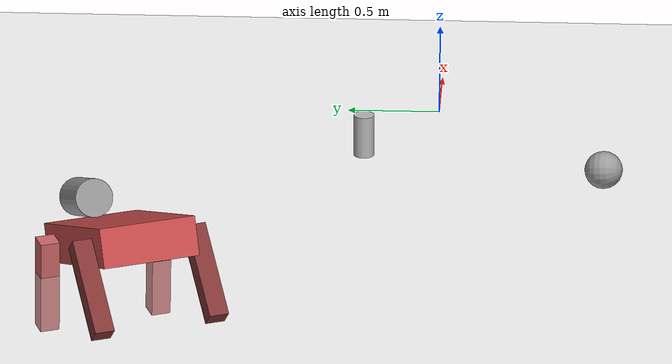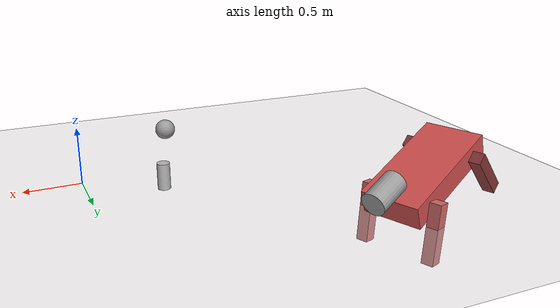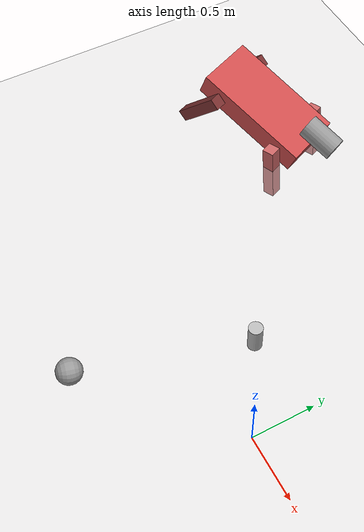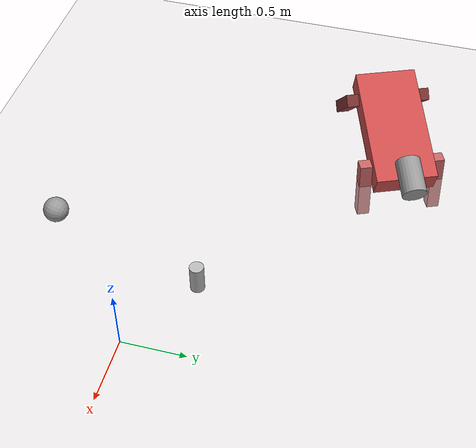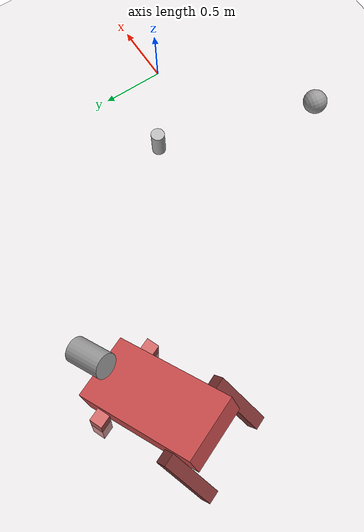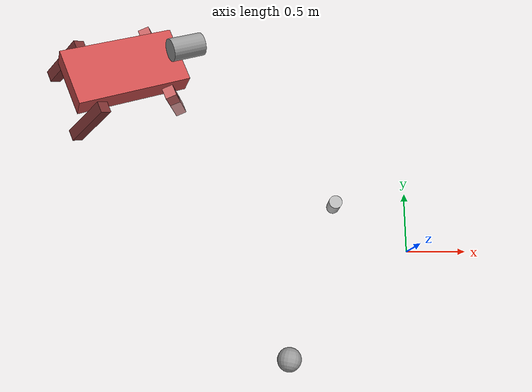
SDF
<sdf version="1.6">
 <world name="default">
  <model name="ground_plane">
   <static>1</static>
   <link name="link">
    <collision name="collision">
     <geometry><plane><normal>0 0 1</normal><size>100 100</size></plane></geometry>
     <surface><friction><ode><mu>100</mu><mu2>50</mu2></ode></friction></surface>
    </collision>
    <visual name="visual">
     <cast_shadows>0</cast_shadows>
     <geometry><plane><normal>0 0 1</normal><size>100 100</size></plane></geometry>
     <material>
      <script><uri>file://media/materials/scripts/gazebo.material</uri><name>Gazebo/Grey</name></script>
     </material>
    </visual>
   </link>
  </model>
  <model name="animal">
   <link name="link_2">
    <pose>-0.089432 0 0.1 0 -0 0</pose>
    <inertial>
     <mass>1</mass>
     <inertia>
      <ixx>0.166667</ixx>
      <ixy>0</ixy>
      <ixz>0</ixz>
      <iyy>0.166667</iyy>
      <iyz>0</iyz>
      <izz>0.166667</izz>
     </inertia>
    </inertial>
    <visual name="visual">
     <geometry><box><size>1 0.5 0.2</size></box></geometry>
     <material>
      <lighting>1</lighting>
      <script><uri>file://media/materials/scripts/gazebo.material</uri><name>Gazebo/Grey</name></script>
      <shader type="pixel"><normal_map>__default__</normal_map></shader>
      <ambient>0.3 0.3 0.3 1</ambient>
      <diffuse>0.8 0.3 0.3 1</diffuse>
      <specular>0.01 0.01 0.01 1</specular>
      <emissive>0 0 0 1</emissive>
     </material>
    </visual>
    <collision name="collision">
     <geometry><box><size>1 0.5 0.2</size></box></geometry>
     <surface>
      <friction>
       <ode><mu>1</mu><mu2>1</mu2><fdir1>0 0 0</fdir1><slip1>0</slip1><slip2>0</slip2></ode>
       <torsional>
        <coefficient>1</coefficient>
        <patch_radius>0</patch_radius>
        <surface_radius>0</surface_radius>
        <use_patch_radius>1</use_patch_radius>
        <ode><slip>0</slip></ode>
       </torsional>
      </friction>
      <bounce><restitution_coefficient>0</restitution_coefficient><threshold>1e+06</threshold></bounce>
      <contact>
       <collide_without_contact>0</collide_without_contact>
       <collide_without_contact_bitmask>1</collide_without_contact_bitmask>
       <collide_bitmask>1</collide_bitmask>
       <ode>
        <soft_cfm>0</soft_cfm>
        <soft_erp>0.2</soft_erp>
        <kp>1e+13</kp>
        <kd>1</kd>
        <max_vel>0.01</max_vel>
        <min_depth>0</min_depth>
       </ode>
       <bullet>
        <split_impulse>1</split_impulse>
        <split_impulse_penetration_threshold>-0.01</split_impulse_penetration_threshold>
        <soft_cfm>0</soft_cfm>
        <soft_erp>0.2</soft_erp>
        <kp>1e+13</kp>
        <kd>1</kd>
       </bullet>
      </contact>
     </surface>
    </collision>
   </link>
   <link name="link_3">
    <pose>0.310565 0.3 -0.1 -3.14159 -1.14159 -3.14159</pose>
    <inertial>
     <mass>1</mass>
     <inertia>
      <ixx>0.166667</ixx>
      <ixy>0</ixy>
      <ixz>0</ixz>
      <iyy>0.166667</iyy>
      <iyz>0</iyz>
      <izz>0.166667</izz>
     </inertia>
    </inertial>
    <visual name="visual">
     <geometry><box><size>0.5 0.1 0.1</size></box></geometry>
     <material>
      <lighting>1</lighting>
      <script><uri>file://media/materials/scripts/gazebo.material</uri><name>Gazebo/Grey</name></script>
      <shader type="pixel"><normal_map>__default__</normal_map></shader>
      <ambient>0.3 0.3 0.3 1</ambient>
      <diffuse>0.8 0.4 0.4 1</diffuse>
      <specular>0.01 0.01 0.01 1</specular>
      <emissive>0 0 0 1</emissive>
     </material>
    </visual>
    <collision name="collision">
     <geometry><box><size>0.5 0.1 0.1</size></box></geometry>
     <surface>
      <friction>
       <ode><mu>1</mu><mu2>1</mu2><fdir1>0 0 0</fdir1><slip1>0</slip1><slip2>0</slip2></ode>
       <torsional>
        <coefficient>1</coefficient>
        <patch_radius>0</patch_radius>
        <surface_radius>0</surface_radius>
        <use_patch_radius>1</use_patch_radius>
        <ode><slip>0</slip></ode>
       </torsional>
      </friction>
      <bounce><restitution_coefficient>0</restitution_coefficient><threshold>1e+06</threshold></bounce>
      <contact>
       <collide_without_contact>0</collide_without_contact>
       <collide_without_contact_bitmask>1</collide_without_contact_bitmask>
       <collide_bitmask>1</collide_bitmask>
       <ode>
        <soft_cfm>0</soft_cfm>
        <soft_erp>0.2</soft_erp>
        <kp>1e+13</kp>
        <kd>1</kd>
        <max_vel>0.01</max_vel>
        <min_depth>0</min_depth>
       </ode>
       <bullet>
        <split_impulse>1</split_impulse>
        <split_impulse_penetration_threshold>-0.01</split_impulse_penetration_threshold>
        <soft_cfm>0</soft_cfm>
        <soft_erp>0.2</soft_erp>
        <kp>1e+13</kp>
        <kd>1</kd>
       </bullet>
      </contact>
     </surface>
    </collision>
   </link>
   <link name="link_3_clone">
    <pose>-0.489432 0.3 -0.1 0 -1.14159 0</pose>
    <inertial>
     <mass>1</mass>
     <inertia>
      <ixx>0.166667</ixx>
      <ixy>0</ixy>
      <ixz>0</ixz>
      <iyy>0.166667</iyy>
      <iyz>0</iyz>
      <izz>0.166667</izz>
     </inertia>
    </inertial>
    <visual name="visual">
     <geometry><box><size>0.5 0.1 0.1</size></box></geometry>
     <material>
      <lighting>1</lighting>
      <script><uri>file://media/materials/scripts/gazebo.material</uri><name>Gazebo/Grey</name></script>
      <shader type="pixel"><normal_map>__default__</normal_map></shader>
      <ambient>0.3 0.3 0.3 1</ambient>
      <diffuse>0.5 0.2 0.2 1</diffuse>
      <specular>0.01 0.01 0.01 1</specular>
      <emissive>0 0 0 1</emissive>
     </material>
    </visual>
    <collision name="collision">
     <geometry><box><size>0.5 0.1 0.1</size></box></geometry>
     <surface>
      <friction>
       <ode><mu>1</mu><mu2>1</mu2><fdir1>0 0 0</fdir1><slip1>0</slip1><slip2>0</slip2></ode>
       <torsional>
        <coefficient>1</coefficient>
        <patch_radius>0</patch_radius>
        <surface_radius>0</surface_radius>
        <use_patch_radius>1</use_patch_radius>
        <ode><slip>0</slip></ode>
       </torsional>
      </friction>
      <bounce><restitution_coefficient>0</restitution_coefficient><threshold>1e+06</threshold></bounce>
      <contact>
       <collide_without_contact>0</collide_without_contact>
       <collide_without_contact_bitmask>1</collide_without_contact_bitmask>
       <collide_bitmask>1</collide_bitmask>
       <ode>
        <soft_cfm>0</soft_cfm>
        <soft_erp>0.2</soft_erp>
        <kp>1e+13</kp>
        <kd>1</kd>
        <max_vel>0.01</max_vel>
        <min_depth>0</min_depth>
       </ode>
       <bullet>
        <split_impulse>1</split_impulse>
        <split_impulse_penetration_threshold>-0.01</split_impulse_penetration_threshold>
        <soft_cfm>0</soft_cfm>
        <soft_erp>0.2</soft_erp>
        <kp>1e+13</kp>
        <kd>1</kd>
       </bullet>
      </contact>
     </surface>
    </collision>
   </link>
   <link name="link_3_clone_0">
    <pose>0.310565 -0.3 -0.1 -3.14159 -1.14159 -3.14159</pose>
    <inertial>
     <mass>1</mass>
     <inertia>
      <ixx>0.166667</ixx>
      <ixy>0</ixy>
      <ixz>0</ixz>
      <iyy>0.166667</iyy>
      <iyz>0</iyz>
      <izz>0.166667</izz>
     </inertia>
    </inertial>
    <visual name="visual">
     <geometry><box><size>0.5 0.1 0.1</size></box></geometry>
     <material>
      <lighting>1</lighting>
      <script><uri>file://media/materials/scripts/gazebo.material</uri><name>Gazebo/Grey</name></script>
      <shader type="pixel"><normal_map>__default__</normal_map></shader>
      <ambient>0.3 0.3 0.3 1</ambient>
      <diffuse>0.8 0.4 0.4 1</diffuse>
      <specular>0.01 0.01 0.01 1</specular>
      <emissive>0 0 0 1</emissive>
     </material>
    </visual>
    <collision name="collision">
     <geometry><box><size>0.5 0.1 0.1</size></box></geometry>
     <surface>
      <friction>
       <ode><mu>1</mu><mu2>1</mu2><fdir1>0 0 0</fdir1><slip1>0</slip1><slip2>0</slip2></ode>
       <torsional>
        <coefficient>1</coefficient>
        <patch_radius>0</patch_radius>
        <surface_radius>0</surface_radius>
        <use_patch_radius>1</use_patch_radius>
        <ode><slip>0</slip></ode>
       </torsional>
      </friction>
      <bounce><restitution_coefficient>0</restitution_coefficient><threshold>1e+06</threshold></bounce>
      <contact>
       <collide_without_contact>0</collide_without_contact>
       <collide_without_contact_bitmask>1</collide_without_contact_bitmask>
       <collide_bitmask>1</collide_bitmask>
       <ode>
        <soft_cfm>0</soft_cfm>
        <soft_erp>0.2</soft_erp>
        <kp>1e+13</kp>
        <kd>1</kd>
        <max_vel>0.01</max_vel>
        <min_depth>0</min_depth>
       </ode>
       <bullet>
        <split_impulse>1</split_impulse>
        <split_impulse_penetration_threshold>-0.01</split_impulse_penetration_threshold>
        <soft_cfm>0</soft_cfm>
        <soft_erp>0.2</soft_erp>
        <kp>1e+13</kp>
        <kd>1</kd>
       </bullet>
      </contact>
     </surface>
    </collision>
   </link>
   <link name="link_3_clone_clone">
    <pose>-0.489432 -0.3 -0.1 0 -1.14159 0</pose>
    <inertial>
     <mass>1</mass>
     <inertia>
      <ixx>0.166667</ixx>
      <ixy>0</ixy>
      <ixz>0</ixz>
      <iyy>0.166667</iyy>
      <iyz>0</iyz>
      <izz>0.166667</izz>
     </inertia>
    </inertial>
    <visual name="visual">
     <geometry><box><size>0.5 0.1 0.1</size></box></geometry>
     <material>
      <lighting>1</lighting>
      <script><uri>file://media/materials/scripts/gazebo.material</uri><name>Gazebo/Grey</name></script>
      <shader type="pixel"><normal_map>__default__</normal_map></shader>
      <ambient>0.3 0.3 0.3 1</ambient>
      <diffuse>0.5 0.2 0.2 1</diffuse>
      <specular>0.01 0.01 0.01 1</specular>
      <emissive>0 0 0 1</emissive>
     </material>
    </visual>
    <collision name="collision">
     <geometry><box><size>0.5 0.1 0.1</size></box></geometry>
     <surface>
      <friction>
       <ode><mu>1</mu><mu2>1</mu2><fdir1>0 0 0</fdir1><slip1>0</slip1><slip2>0</slip2></ode>
       <torsional>
        <coefficient>1</coefficient>
        <patch_radius>0</patch_radius>
        <surface_radius>0</surface_radius>
        <use_patch_radius>1</use_patch_radius>
        <ode><slip>0</slip></ode>
       </torsional>
      </friction>
      <bounce><restitution_coefficient>0</restitution_coefficient><threshold>1e+06</threshold></bounce>
      <contact>
       <collide_without_contact>0</collide_without_contact>
       <collide_without_contact_bitmask>1</collide_without_contact_bitmask>
       <collide_bitmask>1</collide_bitmask>
       <ode>
        <soft_cfm>0</soft_cfm>
        <soft_erp>0.2</soft_erp>
        <kp>1e+13</kp>
        <kd>1</kd>
        <max_vel>0.01</max_vel>
        <min_depth>0</min_depth>
       </ode>
       <bullet>
        <split_impulse>1</split_impulse>
        <split_impulse_penetration_threshold>-0.01</split_impulse_penetration_threshold>
        <soft_cfm>0</soft_cfm>
        <soft_erp>0.2</soft_erp>
        <kp>1e+13</kp>
        <kd>1</kd>
       </bullet>
      </contact>
     </surface>
    </collision>
   </link>
   <link name="link_4">
    <pose>0.447165 0 0.3 0 1.57 0</pose>
    <inertial>
     <mass>1</mass>
     <inertia><ixx>0.1</ixx><ixy>0</ixy><ixz>0</ixz><iyy>0.1</iyy><iyz>0</iyz><izz>0.1</izz></inertia>
    </inertial>
    <visual name="visual">
     <geometry><cylinder><radius>0.1</radius><length>0.3</length></cylinder></geometry>
     <material>
      <lighting>1</lighting>
      <script><uri>file://media/materials/scripts/gazebo.material</uri><name>Gazebo/Grey</name></script>
      <shader type="pixel"><normal_map>__default__</normal_map></shader>
      <ambient>0.1 0.1 0.1 1</ambient>
      <diffuse>0.1 0.1 0.1 1</diffuse>
      <specular>0.01 0.01 0.01 1</specular>
      <emissive>0 0 0 1</emissive>
     </material>
    </visual>
    <collision name="collision">
     <geometry><cylinder><radius>0.1</radius><length>0.3</length></cylinder></geometry>
     <surface>
      <friction>
       <ode><mu>1</mu><mu2>1</mu2><fdir1>0 0 0</fdir1><slip1>0</slip1><slip2>0</slip2></ode>
       <torsional>
        <coefficient>1</coefficient>
        <patch_radius>0</patch_radius>
        <surface_radius>0</surface_radius>
        <use_patch_radius>1</use_patch_radius>
        <ode><slip>0</slip></ode>
       </torsional>
      </friction>
      <bounce><restitution_coefficient>0</restitution_coefficient><threshold>1e+06</threshold></bounce>
      <contact>
       <collide_without_contact>0</collide_without_contact>
       <collide_without_contact_bitmask>1</collide_without_contact_bitmask>
       <collide_bitmask>1</collide_bitmask>
       <ode>
        <soft_cfm>0</soft_cfm>
        <soft_erp>0.2</soft_erp>
        <kp>1e+13</kp>
        <kd>1</kd>
        <max_vel>0.01</max_vel>
        <min_depth>0</min_depth>
       </ode>
       <bullet>
        <split_impulse>1</split_impulse>
        <split_impulse_penetration_threshold>-0.01</split_impulse_penetration_threshold>
        <soft_cfm>0</soft_cfm>
        <soft_erp>0.2</soft_erp>
        <kp>1e+13</kp>
        <kd>1</kd>
       </bullet>
      </contact>
     </surface>
    </collision>
   </link>
   <joint name="link_2_JOINT_0" type="revolute">
    <parent>link_2</parent>
    <child>link_3</child>
    <pose>0.2 0 0 0 -0 0</pose>
    <axis>
     <xyz>0 1 0</xyz>
     <use_parent_model_frame>0</use_parent_model_frame>
     <limit>
      <lower>-1.79769e+308</lower>
      <upper>1.79769e+308</upper>
      <effort>-1</effort>
      <velocity>-1</velocity>
     </limit>
     <dynamics>
      <spring_reference>0</spring_reference>
      <spring_stiffness>0</spring_stiffness>
      <damping>0</damping>
     </dynamics>
    </axis>
    <physics>
     <ode><limit><cfm>0</cfm><erp>0.2</erp></limit><suspension><cfm>0</cfm><erp>0.2</erp></suspension></ode>
    </physics>
   </joint>
   <joint name="link_2_JOINT_1" type="revolute">
    <parent>link_2</parent>
    <child>link_3_clone_0</child>
    <pose>0.2 0 0 0 -0 0</pose>
    <axis>
     <xyz>0 1 0</xyz>
     <use_parent_model_frame>0</use_parent_model_frame>
     <limit>
      <lower>-1.79769e+308</lower>
      <upper>1.79769e+308</upper>
      <effort>-1</effort>
      <velocity>-1</velocity>
     </limit>
     <dynamics>
      <spring_reference>0</spring_reference>
      <spring_stiffness>0</spring_stiffness>
      <damping>0</damping>
     </dynamics>
    </axis>
    <physics>
     <ode><limit><cfm>0</cfm><erp>0.2</erp></limit><suspension><cfm>0</cfm><erp>0.2</erp></suspension></ode>
    </physics>
   </joint>
   <joint name="link_2_JOINT_2" type="revolute">
    <parent>link_2</parent>
    <child>link_3_clone</child>
    <pose>0.2 0 0 0 -0 0</pose>
    <axis>
     <xyz>0 1 0</xyz>
     <use_parent_model_frame>0</use_parent_model_frame>
     <limit>
      <lower>-1.79769e+308</lower>
      <upper>1.79769e+308</upper>
      <effort>-1</effort>
      <velocity>-1</velocity>
     </limit>
     <dynamics>
      <spring_reference>0</spring_reference>
      <spring_stiffness>0</spring_stiffness>
      <damping>0</damping>
     </dynamics>
    </axis>
    <physics>
     <ode><limit><cfm>0</cfm><erp>0.2</erp></limit><suspension><cfm>0</cfm><erp>0.2</erp></suspension></ode>
    </physics>
   </joint>
   <joint name="link_2_JOINT_3" type="revolute">
    <parent>link_2</parent>
    <child>link_3_clone_clone</child>
    <pose>0.2 0 0 0 -0 0</pose>
    <axis>
     <xyz>1 0 0</xyz>
     <use_parent_model_frame>0</use_parent_model_frame>
     <limit>
      <lower>-1.79769e+308</lower>
      <upper>1.79769e+308</upper>
      <effort>-1</effort>
      <velocity>-1</velocity>
     </limit>
     <dynamics>
      <spring_reference>0</spring_reference>
      <spring_stiffness>0</spring_stiffness>
      <damping>0</damping>
     </dynamics>
    </axis>
    <physics>
     <ode><limit><cfm>0</cfm><erp>0.2</erp></limit><suspension><cfm>0</cfm><erp>0.2</erp></suspension></ode>
    </physics>
   </joint>
   <joint name="link_2_JOINT_5" type="ball">
    <parent>link_2</parent>
    <child>link_4</child>
    <physics>
     <ode><limit><cfm>0</cfm><erp>0.2</erp></limit><suspension><cfm>0</cfm><erp>0.2</erp></suspension></ode>
    </physics>
   </joint>
   <static>0</static>
   <pose>-2.39881 1.55137 0.142139 -5e-06 0.353523 0.40395</pose>
  </model>
  <model name="beer">
   <link name="link">
    <pose>0 0 0.115 0 -0 0</pose>
    <inertial>
     <mass>0.39</mass>
     <inertia><ixx>0.00058</ixx><ixy>0</ixy><ixz>0</ixz><iyy>0.00058</iyy><iyz>0</iyz><izz>0.00019</izz></inertia>
    </inertial>
    <collision name="collision">
     <geometry><cylinder><radius>0.055</radius><length>0.23</length></cylinder></geometry>
    </collision>
    <visual name="visual">
     <geometry><cylinder><radius>0.055</radius><length>0.23</length></cylinder></geometry>
     <material>
      <script>
       <uri>model://beer/materials/scripts</uri>
       <uri>model://beer/materials/textures</uri>
       <name>Beer/Diffuse</name>
      </script>
     </material>
    </visual>
   </link>
   <pose>-0.625309 0.384711 -2e-06 1e-06 -0 0.290295</pose>
  </model>
  <model name="my_ball">
   <link name="link_0">
    <inertial>
     <mass>1</mass>
     <inertia><ixx>0.1</ixx><ixy>0</ixy><ixz>0</ixz><iyy>0.1</iyy><iyz>0</iyz><izz>0.1</izz></inertia>
    </inertial>
    <visual name="visual">
     <geometry><sphere><radius>0.1</radius></sphere></geometry>
     <material>
      <lighting>1</lighting>
      <script><uri>file://media/materials/scripts/gazebo.material</uri><name>Gazebo/Grey</name></script>
      <shader type="pixel"><normal_map>__default__</normal_map></shader>
      <ambient>1 1 1 1</ambient>
      <diffuse>1 1 1 1</diffuse>
      <specular>1 1 1 1</specular>
      <emissive>1 1 1 1</emissive>
     </material>
    </visual>
    <collision name="collision">
     <geometry><sphere><radius>0.1</radius></sphere></geometry>
     <surface>
      <friction>
       <ode><mu>1</mu><mu2>1</mu2><fdir1>0 0 0</fdir1><slip1>0</slip1><slip2>0</slip2></ode>
       <torsional>
        <coefficient>1</coefficient>
        <patch_radius>0</patch_radius>
        <surface_radius>0</surface_radius>
        <use_patch_radius>1</use_patch_radius>
        <ode><slip>0</slip></ode>
       </torsional>
      </friction>
      <bounce><restitution_coefficient>0</restitution_coefficient><threshold>1e+06</threshold></bounce>
      <contact>
       <collide_without_contact>0</collide_without_contact>
       <collide_without_contact_bitmask>1</collide_without_contact_bitmask>
       <collide_bitmask>1</collide_bitmask>
       <ode>
        <soft_cfm>0</soft_cfm>
        <soft_erp>0.2</soft_erp>
        <kp>1e+13</kp>
        <kd>1</kd>
        <max_vel>0.01</max_vel>
        <min_depth>0</min_depth>
       </ode>
       <bullet>
        <split_impulse>1</split_impulse>
        <split_impulse_penetration_threshold>-0.01</split_impulse_penetration_threshold>
        <soft_cfm>0</soft_cfm>
        <soft_erp>0.2</soft_erp>
        <kp>1e+13</kp>
        <kd>1</kd>
       </bullet>
      </contact>
     </surface>
    </collision>
   </link>
   <static>0</static>
   <pose>-1.0124 -0.90235 0.1 1.43958 0.468789 -0.244863</pose>
  </model>
 </world>
</sdf>
